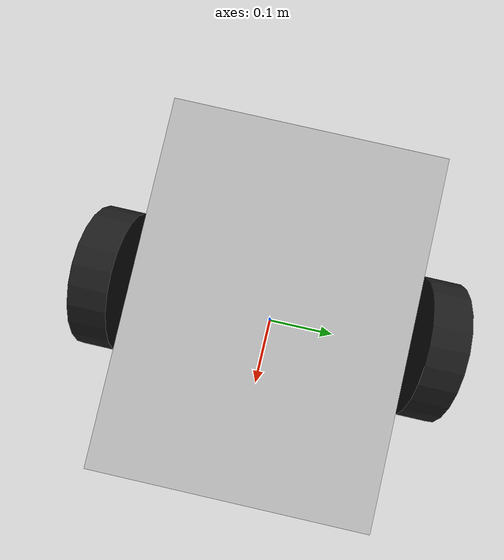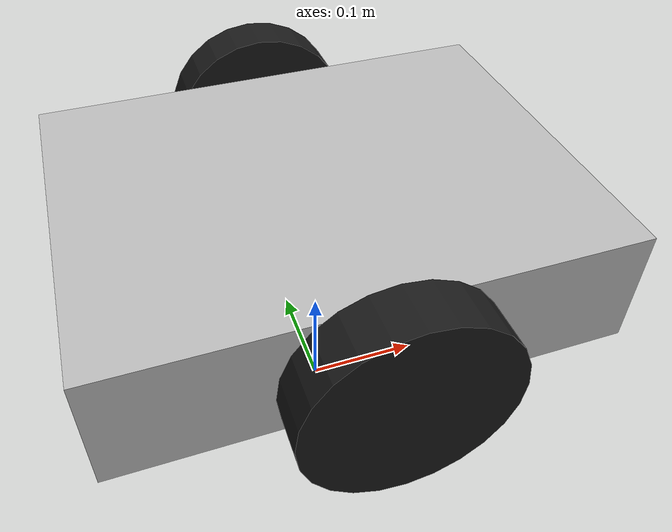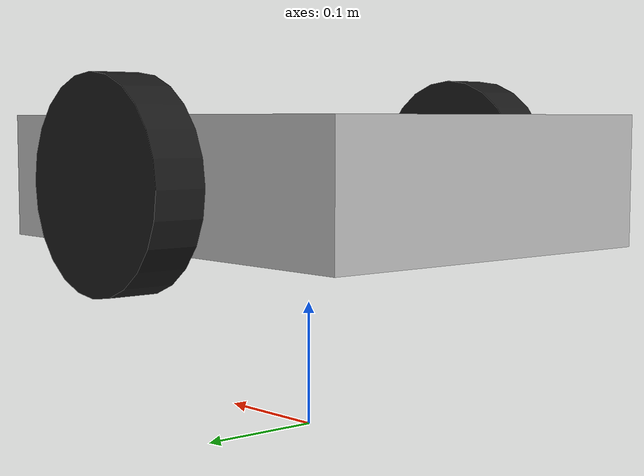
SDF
<?xml version="1.0" ?>
<sdf version="1.9">

  <model name="my_rover">

    <pose>0 0 0.2 0 0 0</pose>

    <link name="chassis">

      <inertial>
        <mass>5.0</mass>
        <inertia>
          <ixx>0.1</ixx>
          <iyy>0.1</iyy>
          <izz>0.1</izz>
        </inertia>
      </inertial>

      <collision name="collision">
        <geometry>
          <box>
            <size>0.4 0.3 0.1</size>
          </box>
        </geometry>
      </collision>

      <visual name="visual">
        <geometry>
          <box>
            <size>0.4 0.3 0.1</size>
          </box>
        </geometry>
      </visual>

    </link>

    <link name="left_wheel">

  <pose>0 0.18 0 1.5708 0 0</pose>

  <inertial>
    <mass>0.3</mass>
    <inertia>
      <ixx>0.001</ixx>
      <iyy>0.001</iyy>
      <izz>0.001</izz>
    </inertia>
  </inertial>

  <collision name="collision">
    <geometry>
      <cylinder>
        <radius>0.08</radius>
        <length>0.04</length>
      </cylinder>
    </geometry>
  </collision>

  <visual name="visual">
    <geometry>
      <cylinder>
        <radius>0.08</radius>
        <length>0.04</length>
      </cylinder>
    </geometry>
    <material>
      <ambient>0.1 0.1 0.1 1</ambient>
      <diffuse>0.1 0.1 0.1 1</diffuse>
    </material>
  </visual>

</link>

   <link name="right_wheel">

  <pose>0 -0.18 0 1.5708 0 0</pose>

  <inertial>
    <mass>0.3</mass>
    <inertia>
      <ixx>0.001</ixx>
      <iyy>0.001</iyy>
      <izz>0.001</izz>
    </inertia>
  </inertial>

  <collision name="collision">
    <geometry>
      <cylinder>
        <radius>0.08</radius>
        <length>0.04</length>
      </cylinder>
    </geometry>
  </collision>

  <visual name="visual">
    <geometry>
      <cylinder>
        <radius>0.08</radius>
        <length>0.04</length>
      </cylinder>
    </geometry>
    <material>
      <ambient>0.1 0.1 0.1 1</ambient>
      <diffuse>0.1 0.1 0.1 1</diffuse>
    </material>
  </visual>

</link>

<joint name="left_wheel_joint" type="revolute">

  <parent>chassis</parent>
  <child>left_wheel</child>

  <pose>0 0.18 0 0 0 0</pose>

  <axis>
    <xyz>0 1 0</xyz>

    <limit>
      <lower>-1000000</lower>
      <upper>1000000</upper>
    </limit>

    <dynamics>
      <damping>0.1</damping>
    </dynamics>
  </axis>

</joint>

<joint name="right_wheel_joint" type="revolute">

  <parent>chassis</parent>
  <child>right_wheel</child>

  <pose>0 -0.18 0 0 0 0</pose>

  <axis>
    <xyz>0 1 0</xyz>

    <limit>
      <lower>-1000000</lower>
      <upper>1000000</upper>
    </limit>

    <dynamics>
      <damping>0.1</damping>
    </dynamics>
  </axis>

</joint>

<plugin
    filename="gz-sim-diff-drive-system"
    name="gz::sim::systems::DiffDrive">

    <left_joint>left_wheel_joint</left_joint>
    <right_joint>right_wheel_joint</right_joint>

    <wheel_separation>0.36</wheel_separation>
    <wheel_radius>0.08</wheel_radius>

    <topic>cmd_vel</topic>

    <odom_topic>odom</odom_topic>
    <tf_topic>tf</tf_topic>

</plugin>

  </model>

</sdf>
